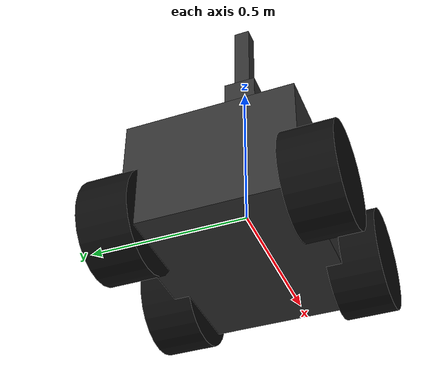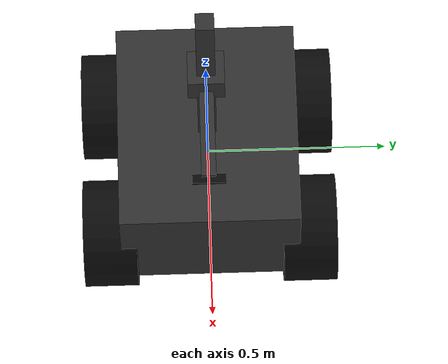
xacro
<?xml version="1.0"?>
<robot name="egrobots_rover" xmlns:xacro="http://www.ros.org/wiki/xacro">

  <xacro:arg name="sensor_suite" default="depth"/>
  <xacro:property name="suite" value="$(arg sensor_suite)"/>
  <xacro:property name="use_lidar" value="${suite == 'lidar' or suite == 'both'}"/>
  <xacro:property name="use_depth" value="${suite == 'depth' or suite == 'both'}"/>

  <!-- Camera placement, in one place so the converter node and the URDF
       cannot disagree. base_link rides 0.25 m above the ground, so a camera
       at base_link z = 0.45 is 0.70 m up. -->
  <xacro:property name="cam_x" value="0.30"/>
  <xacro:property name="cam_z" value="0.45"/>
  <xacro:property name="cam_pitch" value="0.31416"/>   <!-- 18 deg nose-down -->
  <material name="dark_grey">
    <color rgba="0.2 0.2 0.2 1"/>
  </material>
  <material name="black">
    <color rgba="0.05 0.05 0.05 1"/>
  </material>
  <link name="base_link">
    <visual>
      <geometry>
        <box size="0.6 0.5 0.35"/>
      </geometry>
      <origin xyz="0 0 0" rpy="0 0 0"/>
      <material name="dark_grey"/>
    </visual>
    <collision>
      <geometry>
        <box size="0.6 0.5 0.35"/>
      </geometry>
      <origin xyz="0 0 0" rpy="0 0 0"/>
    </collision>
    <inertial>
      <mass value="10.0"/>
      <inertia ixx="0.3" ixy="0.0" ixz="0.0" iyy="0.4" iyz="0.0" izz="0.5"/>
    </inertial>
  </link>
  <link name="wheel_front_left">
    <visual>
      <geometry>
        <cylinder radius="0.15" length="0.15"/>
      </geometry>
      <origin xyz="0 0 0" rpy="1.5708 0 0"/>
      <material name="black"/>
    </visual>
    <collision>
      <geometry>
        <cylinder radius="0.15" length="0.15"/>
      </geometry>
      <origin xyz="0 0 0" rpy="1.5708 0 0"/>
    </collision>
    <inertial>
      <mass value="1.0"/>
      <inertia ixx="0.0075" ixy="0.0" ixz="0.0" iyy="0.01125" iyz="0.0" izz="0.0075"/>
    </inertial>
  </link>

  <joint name="wheel_front_left_joint" type="continuous">
    <parent link="base_link"/>
    <child link="wheel_front_left"/>
    <origin xyz="0.2 0.28 -0.1" rpy="0 0 0"/>
    <axis xyz="0 1 0"/>
  </joint>
  <link name="wheel_front_right">
    <visual>
      <geometry>
        <cylinder radius="0.15" length="0.15"/>
      </geometry>
      <origin xyz="0 0 0" rpy="1.5708 0 0"/>
      <material name="black"/>
    </visual>
    <collision>
      <geometry>
        <cylinder radius="0.15" length="0.15"/>
      </geometry>
      <origin xyz="0 0 0" rpy="1.5708 0 0"/>
    </collision>
    <inertial>
      <mass value="1.0"/>
      <inertia ixx="0.0075" ixy="0.0" ixz="0.0" iyy="0.01125" iyz="0.0" izz="0.0075"/>
    </inertial>
  </link>

  <joint name="wheel_front_right_joint" type="continuous">
    <parent link="base_link"/>
    <child link="wheel_front_right"/>
    <origin xyz="0.2 -0.28 -0.1" rpy="0 0 0"/>
    <axis xyz="0 1 0"/>
  </joint>

  <link name="wheel_rear_left">
    <visual>
      <geometry>
        <cylinder radius="0.15" length="0.15"/>
      </geometry>
      <origin xyz="0 0 0" rpy="1.5708 0 0"/>
      <material name="black"/>
    </visual>
    <collision>
      <geometry>
        <cylinder radius="0.15" length="0.15"/>
      </geometry>
      <origin xyz="0 0 0" rpy="1.5708 0 0"/>
    </collision>
    <inertial>
      <mass value="1.0"/>
      <inertia ixx="0.0075" ixy="0.0" ixz="0.0" iyy="0.01125" iyz="0.0" izz="0.0075"/>
    </inertial>
  </link>

  <joint name="wheel_rear_left_joint" type="continuous">
    <parent link="base_link"/>
    <child link="wheel_rear_left"/>
    <origin xyz="-0.2 0.28 -0.1" rpy="0 0 0"/>
    <axis xyz="0 1 0"/>
  </joint>

  <link name="wheel_rear_right">
    <visual>
      <geometry>
        <cylinder radius="0.15" length="0.15"/>
      </geometry>
      <origin xyz="0 0 0" rpy="1.5708 0 0"/>
      <material name="black"/>
    </visual>
    <collision>
      <geometry>
        <cylinder radius="0.15" length="0.15"/>
      </geometry>
      <origin xyz="0 0 0" rpy="1.5708 0 0"/>
    </collision>
    <inertial>
      <mass value="1.0"/>
      <inertia ixx="0.0075" ixy="0.0" ixz="0.0" iyy="0.01125" iyz="0.0" izz="0.0075"/>
    </inertial>
  </link>

  <joint name="wheel_rear_right_joint" type="continuous">
    <parent link="base_link"/>
    <child link="wheel_rear_right"/>
    <origin xyz="-0.2 -0.28 -0.1" rpy="0 0 0"/>
    <axis xyz="0 1 0"/>
  </joint>
  <link name="mast">
    <visual>
      <geometry>
        <box size="0.05 0.05 0.6"/>
      </geometry>
      <origin xyz="0 0 0" rpy="0 0 0"/>
      <material name="dark_grey"/>
    </visual>
    <collision>
      <geometry>
        <box size="0.05 0.05 0.6"/>
      </geometry>
      <origin xyz="0 0 0" rpy="0 0 0"/>
    </collision>
    <inertial>
      <mass value="0.5"/>
      <inertia ixx="0.01" ixy="0.0" ixz="0.0" iyy="0.01" iyz="0.0" izz="0.01"/>
    </inertial>
  </link>

  <joint name="mast_joint" type="fixed">
    <parent link="base_link"/>
    <child link="mast"/>
    <origin xyz="0 0 0.475" rpy="0 0 0"/>
  </joint>
  <link name="sensor_mount">
    <visual>
      <geometry>
        <box size="0.1 0.1 0.08"/>
      </geometry>
      <origin xyz="0 0 0" rpy="0 0 0"/>
      <material name="dark_grey"/>
    </visual>
    <collision>
      <geometry>
        <box size="0.1 0.1 0.08"/>
      </geometry>
      <origin xyz="0 0 0" rpy="0 0 0"/>
    </collision>
    <inertial>
      <mass value="0.2"/>
      <inertia ixx="0.001" ixy="0.0" ixz="0.0" iyy="0.001" iyz="0.0" izz="0.001"/>
    </inertial>
  </link>

  <joint name="sensor_mount_joint" type="fixed">
    <parent link="mast"/>
    <child link="sensor_mount"/>
    <origin xyz="0 0 0" rpy="0 0 0"/>
  </joint>

  <!-- IMU, mounted on the chassis. Its yaw measurement is independent of the
       wheels, so it is unaffected by the sideways scrub that corrupts wheel
       odometry on a skid-steer platform. -->
  <link name="imu_link">
    <inertial>
      <mass value="0.01"/>
      <inertia ixx="1e-6" ixy="0.0" ixz="0.0" iyy="1e-6" iyz="0.0" izz="1e-6"/>
    </inertial>
  </link>

  <joint name="imu_joint" type="fixed">
    <parent link="base_link"/>
    <child link="imu_link"/>
    <origin xyz="0 0 0.1" rpy="0 0 0"/>
  </joint>

  <link name="camera_arm">
    <visual>
      <geometry>
        <box size="0.30 0.04 0.04"/>
      </geometry>
      <origin xyz="0 0 0" rpy="0 0 0"/>
      <material name="dark_grey"/>
    </visual>
    <inertial>
      <mass value="0.1"/>
      <inertia ixx="1e-4" ixy="0.0" ixz="0.0" iyy="1e-3" iyz="0.0" izz="1e-3"/>
    </inertial>
  </link>

  <joint name="camera_arm_joint" type="fixed">
    <parent link="mast"/>
    <child link="camera_arm"/>
    <!-- mast origin is base_link z=0.475, so -0.025 puts the arm at z=0.45 -->
    <origin xyz="0.15 0 -0.025" rpy="0 0 0"/>
  </joint>

  <link name="camera_link">
    <visual>
      <geometry>
        <box size="0.025 0.09 0.025"/>
      </geometry>
      <origin xyz="0 0 0" rpy="0 0 0"/>
      <material name="black"/>
    </visual>
    <inertial>
      <mass value="0.07"/>
      <inertia ixx="1e-5" ixy="0.0" ixz="0.0" iyy="1e-5" iyz="0.0" izz="1e-5"/>
    </inertial>
  </link>

  <joint name="camera_joint" type="fixed">
    <parent link="camera_arm"/>
    <child link="camera_link"/>
    <origin xyz="0.15 0 0" rpy="0 ${cam_pitch} 0"/>
  </joint>

  <link name="camera_link_optical"/>

  <joint name="camera_optical_joint" type="fixed">
    <parent link="camera_link"/>
    <child link="camera_link_optical"/>
    <origin xyz="0 0 0" rpy="-1.5708 0 -1.5708"/>
  </joint>

  <link name="camera_scan_frame"/>

  <joint name="camera_scan_joint" type="fixed">
    <parent link="base_link"/>
    <child link="camera_scan_frame"/>
    <origin xyz="${cam_x} 0 ${cam_z}" rpy="0 0 0"/>
  </joint>
  <gazebo reference="base_link">
    <material>Gazebo/DarkGrey</material>
  </gazebo>

  <gazebo reference="wheel_front_left">
    <material>Gazebo/Black</material>
    <mu1>0.3</mu1>
    <mu2>0.3</mu2>
  </gazebo>
  <gazebo reference="wheel_front_right">
    <material>Gazebo/Black</material>
    <mu1>0.3</mu1>
    <mu2>0.3</mu2>
  </gazebo>
  <gazebo reference="wheel_rear_left">
    <material>Gazebo/Black</material>
    <mu1>0.3</mu1>
    <mu2>0.3</mu2>
  </gazebo>
  <gazebo reference="wheel_rear_right">
    <material>Gazebo/Black</material>
    <mu1>0.3</mu1>
    <mu2>0.3</mu2>
  </gazebo>

  <gazebo reference="mast">
    <material>Gazebo/DarkGrey</material>
  </gazebo>

  <gazebo reference="sensor_mount">
    <material>Gazebo/Black</material>
  </gazebo>

  <gazebo reference="imu_link">
    <gravity>true</gravity>
    <sensor name="imu_sensor" type="imu">
      <always_on>true</always_on>
      <update_rate>100</update_rate>
      <visualize>false</visualize>
      <plugin name="imu_plugin" filename="libgazebo_ros_imu_sensor.so">
        <ros>
          <namespace>/</namespace>
          <remapping>~/out:=imu/data</remapping>
        </ros>
        <frame_name>imu_link</frame_name>
        <initial_orientation_as_reference>false</initial_orientation_as_reference>
      </plugin>
      <imu>
        <angular_velocity>
          <z>
            <noise type="gaussian">
              <mean>0.0</mean>
              <stddev>2e-4</stddev>
            </noise>
          </z>
        </angular_velocity>
      </imu>
    </sensor>
  </gazebo>

  <!-- Ground truth, for scoring the estimator only. Not an input to the EKF,
       the controller or the navigator, and absent on real hardware. -->
  <gazebo>
    <plugin name="ground_truth_p3d" filename="libgazebo_ros_p3d.so">
      <ros>
        <namespace>/</namespace>
        <remapping>odom:=ground_truth/odom</remapping>
      </ros>
      <body_name>base_link</body_name>
      <frame_name>world</frame_name>
      <update_rate>20</update_rate>
      <gaussian_noise>0.0</gaussian_noise>
    </plugin>
  </gazebo>

  <gazebo>
    <plugin name="joint_state_publisher" filename="libgazebo_ros_joint_state_publisher.so">
      <ros>
        <namespace>/</namespace>
      </ros>
      <update_rate>30</update_rate>
      <joint_name>wheel_front_left_joint</joint_name>
      <joint_name>wheel_front_right_joint</joint_name>
      <joint_name>wheel_rear_left_joint</joint_name>
      <joint_name>wheel_rear_right_joint</joint_name>
    </plugin>
  </gazebo>
  <!-- The original 360 deg planar LiDAR. Kept, but off by default, so the two
       sensors can be run against each other on the same world and the same
       mission rather than argued about. -->
  <xacro:if value="${use_lidar}">
    <gazebo reference="sensor_mount">
      <material>Gazebo/Black</material>
      <sensor name="lidar_sensor" type="ray">
        <pose>0 0 0.045 0 0 0</pose>
        <visualize>true</visualize>
        <update_rate>10</update_rate>
        <ray>
          <scan>
            <horizontal>
              <samples>360</samples>
              <resolution>1</resolution>
              <min_angle>-3.14159</min_angle>
              <max_angle>3.14159</max_angle>
            </horizontal>
          </scan>
          <range>
            <min>0.12</min>
            <max>10.0</max>
            <resolution>0.015</resolution>
          </range>
        </ray>
        <plugin name="lidar_plugin" filename="libgazebo_ros_ray_sensor.so">
          <ros>
            <namespace>/</namespace>
            <remapping>~/out:=scan</remapping>
          </ros>
          <output_type>sensor_msgs/LaserScan</output_type>
          <frame_name>sensor_mount</frame_name>
        </plugin>
      </sensor>
    </gazebo>
  </xacro:if>

  <xacro:if value="${use_depth}">
    <gazebo reference="camera_link">
      <material>Gazebo/Blue</material>
      <sensor name="depth_camera" type="depth">
        <always_on>true</always_on>
        <update_rate>10</update_rate>
        <visualize>true</visualize>
        <camera name="depth_camera">
          <horizontal_fov>1.51844</horizontal_fov>
          <image>
            <width>424</width>
            <height>240</height>
            <format>R8G8B8</format>
          </image>
          <clip>
            <near>0.3</near>
            <far>6.0</far>
          </clip>
          <!-- Real depth noise grows with the square of range; Gazebo only
               offers a constant sigma, so this is the near-field figure and
               the far field comes out optimistic. -->
          <noise>
            <type>gaussian</type>
            <mean>0.0</mean>
            <stddev>0.007</stddev>
          </noise>
        </camera>
        <plugin name="depth_camera_plugin" filename="libgazebo_ros_camera.so">
          <ros>
            <namespace>/</namespace>
          </ros>
          <camera_name>camera</camera_name>
          <frame_name>camera_link_optical</frame_name>
          <hack_baseline>0.07</hack_baseline>
          <min_depth>0.3</min_depth>
          <max_depth>6.0</max_depth>
        </plugin>
      </sensor>
    </gazebo>
  </xacro:if>

  <ros2_control name="EgrobotsRoverSystem" type="system">
    <hardware>
      <plugin>gazebo_ros2_control/GazeboSystem</plugin>
    </hardware>
    <joint name="wheel_front_left_joint">
      <command_interface name="velocity"/>
      <state_interface name="velocity"/>
      <state_interface name="position"/>
    </joint>
    <joint name="wheel_front_right_joint">
      <command_interface name="velocity"/>
      <state_interface name="velocity"/>
      <state_interface name="position"/>
    </joint>
    <joint name="wheel_rear_left_joint">
      <command_interface name="velocity"/>
      <state_interface name="velocity"/>
      <state_interface name="position"/>
    </joint>
    <joint name="wheel_rear_right_joint">
      <command_interface name="velocity"/>
      <state_interface name="velocity"/>
      <state_interface name="position"/>
    </joint>
  </ros2_control>

  <gazebo>
    <plugin name="gazebo_ros2_control" filename="libgazebo_ros2_control.so">
      <parameters>$(find egrobots_line_navigation)/config/ros2_controllers.yaml</parameters>
    </plugin>
  </gazebo>

</robot>
